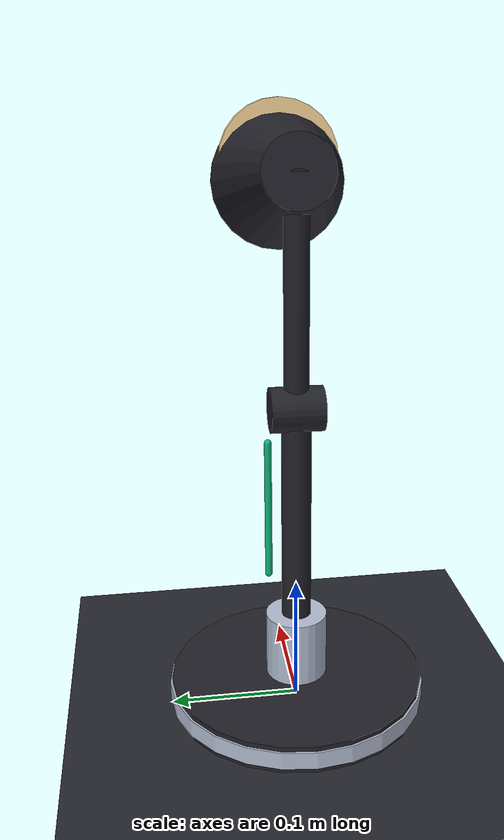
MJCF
<mujoco model="pixar_lamp3d">
  <!-- 圆片底盘 + 双连杆 + 圆台灯罩；质量预算与 2D 方案一致(总 1.291 kg) -->
  <compiler angle="radian" coordinate="local" meshdir="."/>

  <option timestep="0.001" gravity="0 0 -9.81" solver="Newton" iterations="50"/>

  <visual>
    <global offwidth="1280" offheight="960"/>
    <headlight ambient="0.25 0.25 0.28" diffuse="0.7 0.7 0.72"/>
  </visual>

  <asset>
    <texture type="skybox" builtin="gradient" rgb1="0.16 0.16 0.22" rgb2="0.26 0.27 0.35" width="256" height="256"/>
    <texture name="tex_floor" type="2d" builtin="checker" rgb1="0.13 0.13 0.16" rgb2="0.17 0.17 0.21"
             width="512" height="512"/>
    <material name="mat_floor" texture="tex_floor" texrepeat="60 60" specular="0.05" shininess="0.1"/>
    <material name="mat_body" rgba="0.13 0.13 0.16 1" specular="0.25" shininess="0.35"/>
    <material name="mat_chrome" rgba="0.72 0.76 0.84 1" specular="0.85" shininess="0.75"/>
    <material name="mat_spring" rgba="0.06 0.72 0.51 1" specular="0.3" shininess="0.3"/>
    <mesh name="frustum" file="frustum.obj"/>
    <material name="mat_bulb" rgba="1.0 0.86 0.62 1" emission="0.9" specular="0.1"/>
  </asset>

  <default>
    <joint damping="0.05" armature="0.001" limited="true"/>
    <geom contype="1" conaffinity="1" friction="0.65 0.01 0.01" condim="3"
          solref="0.004 1" solimp="0.92 0.99 0.001"/>
    <motor ctrllimited="true" ctrlrange="-12.5 12.5"/>
  </default>

  <worldbody>
    <light directional="true" diffuse="0.55 0.55 0.6" specular="0.25 0.25 0.28" pos="1.5 2 3" dir="-0.25 -0.35 -1"/>
    <light directional="true" diffuse="0.25 0.25 0.3" specular="0.1 0.1 0.12" pos="-2 -1 2.5" dir="0.3 0.2 -1"/>
    <geom name="floor" type="plane" size="12 12 0.05" material="mat_floor"/>
    <camera name="side" pos="0 -1.55 0.42" xyaxes="1 0 0 0 0 1" fovy="41"/>
    <camera name="corner" pos="-1.0 -1.3 0.75" xyaxes="0.75 0.55 0 0.06 -0.08 1" fovy="40"/>
    <camera name="top" pos="0.15 -0.25 1.35" xyaxes="1 0 0 0 1 0.25" fovy="40"/>

    <!-- ============ 底盘: 圆片(超扁圆柱) + 中央立柱(肩电机舱) ============ -->
    <body name="base" pos="0 0 0.011">
      <freejoint name="root"/>
      <geom name="disc" type="cylinder" size="0.10 0.011" pos="0 0 0" material="mat_body"/>
      <geom name="rim" type="cylinder" size="0.1015 0.007" pos="0 0 0" material="mat_chrome"/>
      <geom name="stem" type="cylinder" size="0.024 0.026" pos="0 0 0.037" material="mat_chrome"/>
      <inertial pos="0 0 0.026" mass="0.702" diaginertia="0.0021 0.0021 0.0038"/>
      <site name="imu_site" pos="0 0 0.05" type="sphere" size="0.003" rgba="0 0 0 0"/>

      <!-- 偏航(yaw): 底盘中心 Z 轴旋转 —— 全向移动的航向自由度 -->
      <body name="yaw_link" pos="0 0 0.063">
        <inertial pos="0 0 0" mass="0.02" diaginertia="5e-6 5e-6 8e-6"/>
        <joint name="yaw" type="hinge" axis="0 0 1" pos="0 0 0" range="-3.1416 3.1416"
               damping="0.3" armature="0.004"/>

        <!-- 肩关节 pitch: 下连杆接底盘中心立柱顶端 -->
        <body name="lower_arm" pos="0 0 0">
          <joint name="th1" type="hinge" axis="0 1 0" pos="0 0 0" range="-0.90 1.75"
                 springref="-0.65" stiffness="0.5" frictionloss="0.15"/>
          <geom name="lower_cap" type="capsule" fromto="0 0 0 0 0 0.170" size="0.0115" material="mat_body"
                mass="0.060" density="0"/>
          <geom name="elbow_motor" type="cylinder" size="0.017 0.020" euler="1.5708 0 0"
                pos="0 0 0.170" material="mat_body" density="0" mass="0.317"/>
          <!-- 平衡弹簧(视觉): 沿下连杆的绿色拉簧 -->
          <geom name="spring_vis" type="capsule" fromto="0.012 0.020 0.030 0.012 0.020 0.140"
                size="0.0028" material="mat_spring" contype="0" conaffinity="0" density="0"/>
          <inertial pos="0 0 0.157" mass="0.377" diaginertia="7.5e-4 7.5e-4 2.5e-4"/>

          <!-- 肘关节 pitch -->
          <body name="upper_arm" pos="0 0 0.170">
            <joint name="th2" type="hinge" axis="0 1 0" range="0.05 2.95"
                   springref="0" stiffness="1.5" frictionloss="0.15"/>
            <geom name="upper_cap" type="capsule" fromto="0 0 0.008 0 0 0.160" size="0.0095"
                  material="mat_body" mass="0.060" density="0"/>
            <geom name="neck_servo" type="cylinder" size="0.012 0.012" euler="0 1.5708 0"
                  pos="0 0 0.160" material="mat_body" density="0" mass="0.040"/>
            <inertial pos="0 0 0.112" mass="0.100" diaginertia="3.4e-4 3.4e-4 6e-5"/>

            <!-- 颈关节 pitch: 上连杆顶端接圆台侧面 -->
            <body name="head" pos="0 0 0.160">
              <joint name="th3" type="hinge" axis="0 1 0" pos="0 0 0" range="-1.8 1.2"
                     springref="0.40" stiffness="0.05" frictionloss="0.05" damping="0.02"/>
              <!-- 圆台灯罩: 背面接颈, 罩口朝 +x; 摄像头藏在罩口内 -->
              <geom name="shade" type="mesh" mesh="frustum" pos="-0.012 0 0.010" euler="0 0.15 0"
                    material="mat_body" density="0" mass="0.082"/>
              <geom name="lens_ring" type="cylinder" size="0.046 0.004" euler="0 1.5708 0"
                    pos="0.089 0 0.0095" material="mat_bulb" contype="0" conaffinity="0" density="0"/>
              <geom name="camera_lens" type="cylinder" size="0.009 0.008" euler="0 1.5708 0"
                    pos="0.052 0 0.009" rgba="0.95 0.42 0.10 1" contype="0" conaffinity="0" density="0"/>
              <camera name="head_cam" mode="fixed" pos="0.060 0 0.009" euler="0 1.5708 0" fovy="72"/>
              <site name="imu_head" pos="0.030 0 0.012" type="sphere" size="0.003" rgba="0 0 0 0"/>
              <inertial pos="0.030 0 0.012" mass="0.112" diaginertia="1.6e-4 1.5e-4 2.0e-4"/>
            </body>
          </body>
        </body>
      </body>
    </body>
  </worldbody>

  <contact>
    <exclude body1="base" body2="lower_arm"/>
    <exclude body1="lower_arm" body2="upper_arm"/>
    <exclude body1="upper_arm" body2="head"/>
    <exclude body1="base" body2="upper_arm"/>
    <exclude body1="lower_arm" body2="head"/>
  </contact>

  <sensor>
    <!-- 底盘 IMU(主控板载): 三轴陀螺仪 + 三轴比力 + 姿态四元数 -->
    <gyro name="imu_base_gyro" site="imu_site" noise="0.005" cutoff="30"/>
    <accelerometer name="imu_base_acc" site="imu_site" noise="0.05" cutoff="30"/>
    <framequat name="imu_base_quat" objtype="site" objname="imu_site"/>
    <!-- 头部 IMU(灯罩内摄像头旁): 供万向节云台与视觉定向 -->
    <gyro name="imu_head_gyro" site="imu_head" noise="0.005" cutoff="30"/>
    <accelerometer name="imu_head_acc" site="imu_head" noise="0.05" cutoff="30"/>
    <framequat name="imu_head_quat" objtype="site" objname="imu_head"/>
    <!-- 足底接触推断用: 关节扭矩已由电机反馈, 这里补充底盘三轴力 -->
    <framepos name="base_pos" objtype="body" objname="base"/>
  </sensor>

  <actuator>
    <motor joint="th1" name="m1" gear="1" ctrlrange="-12.5 12.5"/>
    <motor joint="th2" name="m2" gear="1" ctrlrange="-12.5 12.5"/>
    <motor joint="th3" name="m3" gear="1" ctrlrange="-1.2 1.2"/>
    <position joint="yaw" name="myaw" kp="30" kv="6" ctrlrange="-3.1416 3.1416"/>
  </actuator>

  <keyframe>
    <!-- 站立: 下臂/上臂微前倾, 灯罩朝前下 -->
    <!-- ★冻结初始状态(INIT_POSE.json): th1=-0.65 th2=1.466 th3=0.034, 灯头32cm, 勿改★ -->
    <key name="stand" qpos="0 0 0.011 1 0 0 0  0  -0.65 1.466 0.034"/>
    <key name="crouch" qpos="0 0 0.011 1 0 0 0  0  0.85 2.30 0.40"/>
  </keyframe>
</mujoco>
